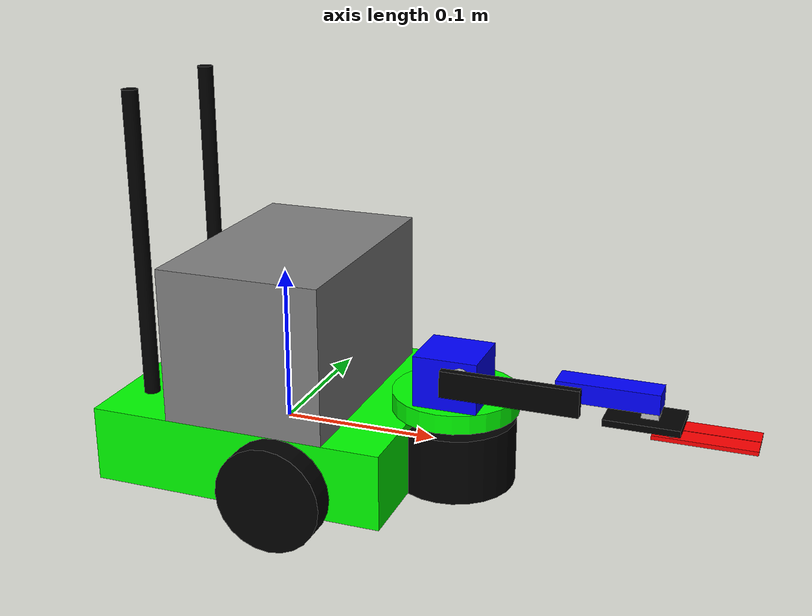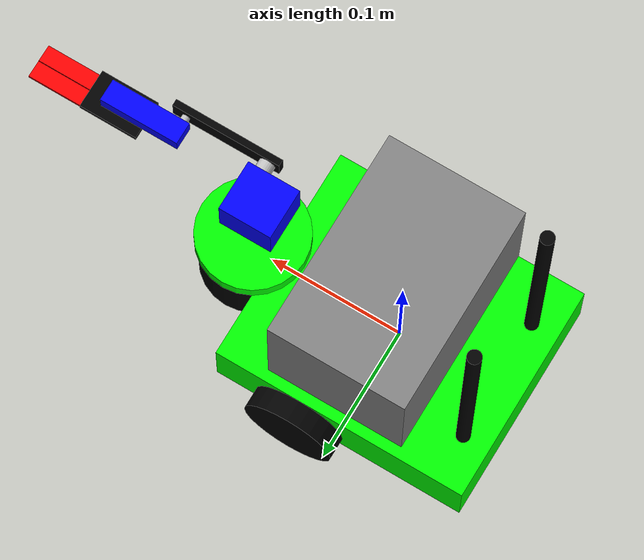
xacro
<?xml version="1.0"?>
<robot name="visual">
    <material name="blue"> <color rgba="0 0 1 1"/> </material>
    <material name="black"> <color rgba="0 0 0 1"/> </material>
    <material name="red"> <color rgba="1 0 0 1"/> </material>
    <material name="white"> <color rgba="1 1 1 1"/> </material>
    <material name="green"> <color rgba="0 1 0 1"/> </material>
    <material name="silver"> <color rgba="0.75 0.75 0.75 1"/> </material>
    <material name="grey"> <color rgba="0.5 0.5 0.5 1"/> </material>

    <!-- Корпус джетбота (с инерцией и коллизией) -->
    <link name="base_link">
        <visual>
            <geometry>
                <box size="0.190 0.162 0.048"/>
            </geometry>
            <material name="green"/>
            <origin xyz="0 0 0" rpy="0 0 0"/>
        </visual>
        <collision>
            <geometry>
                <box size="0.190 0.162 0.048"/>
            </geometry>
            <origin xyz="0 0 0" rpy="0 0 0"/>
        </collision>
        <inertial>
            <mass value="3"/>
            <inertia ixx="0.001" ixy="0" ixz="0"
                iyy="0.001" iyz="0" izz="0.001"/>
        </inertial>
    </link>

    <!-- RP-Lidar (с коллизией и инерцией) -->
    <link name="lidar_link">
        <visual>
            <geometry>
                <cylinder length="0.042" radius="0.038"/>
            </geometry>
            <material name="black"/>
            <origin xyz="0 0 0.021" rpy="0 0 0"/>
        </visual>
        <collision>
            <geometry>
                <cylinder length="0.042" radius="0.038"/>
            </geometry>
            <origin xyz="0 0 0.021" rpy="0 0 0"/>
        </collision>
        <inertial>
            <mass value="0.5"/>
            <inertia ixx="0.001" ixy="0" ixz="0"
                iyy="0.001" iyz="0" izz="0.001"/>
        </inertial>
    </link>

    <joint name="base_link_lidar_joint" type="fixed">
        <parent link="base_link"/>
        <child link="lidar_link"/>
        <origin xyz="0.11491 0 -0.0239" rpy="0 0 2.3562"/>
    </joint>

    <!-- Left wheel (с коллизией и инерцией) -->
    <link name="left_wheel">
        <visual>
            <geometry>
                <cylinder length="0.0156" radius="0.033625"/>
            </geometry>
            <material name="black"/>
            <origin xyz="0 0.0078 0" rpy="1.5708 0 0"/>
        </visual>
        <collision>
            <geometry>
                <cylinder length="0.0156" radius="0.033625"/>
            </geometry>
            <origin xyz="0 0.0078 0" rpy="1.5708 0 0"/>
        </collision>
        <inertial>
            <mass value="0.1"/>
            <inertia ixx="0.001" ixy="0" ixz="0"
                iyy="0.001" iyz="0" izz="0.001"/>
        </inertial>
    </link>

    <joint name="base_link_left_wheel_joint" type="continuous">
        <parent link="base_link"/>
        <child link="left_wheel"/>
        <origin xyz="0.03004 0.08107 -0.00937" rpy="0 0 0"/>
        <axis xyz="0 1 0"/>
    </joint>

    <!-- Right wheel (с коллизией и инерцией) -->
    <link name="right_wheel">
        <visual>
            <geometry>
                <cylinder length="0.0156" radius="0.033625"/>
            </geometry>
            <material name="black"/>
            <origin xyz="0 -0.0078 0" rpy="1.5708 0 0"/>
        </visual>
        <collision>
            <geometry>
                <cylinder length="0.0156" radius="0.033625"/>
            </geometry>
            <origin xyz="0 -0.0078 0" rpy="1.5708 0 0"/>
        </collision>
        <inertial>
            <mass value="0.1"/>
            <inertia ixx="0.001" ixy="0" ixz="0"
                iyy="0.001" iyz="0" izz="0.001"/>
        </inertial>
    </link>

    <joint name="base_link_right_wheel_joint" type="continuous">
        <parent link="base_link"/>
        <child link="right_wheel"/>
        <origin xyz="0.03004 -0.08107 -0.00937" rpy="0 0 0"/>
        <axis xyz="0 1 0"/>
    </joint>

    <!-- Платформа манипулятора -->
    <link name="manipulator_platform">
        <visual>
            <geometry>
                <cylinder length="0.012" radius="0.04"/>
            </geometry>
            <material name="green"/>
            <origin xyz="0.04 0 0.006" rpy="0 0 0"/>
        </visual>
        <collision>
            <geometry>
                <cylinder length="0.012" radius="0.04"/>
            </geometry>
            <origin xyz="0.04 0 0.006" rpy="0 0 0"/>
        </collision>
        <inertial>
            <mass value="0.1"/>
            <inertia ixx="0.001" ixy="0" ixz="0"
                iyy="0.001" iyz="0" izz="0.001"/>
        </inertial>
    </link>

    <joint name="base_link_manipulator_platform_joint" type="fixed">
        <parent link="base_link"/>
        <child link="manipulator_platform"/>
        <origin xyz="0.07491 0 0.0239" rpy="0 0 0"/>
    </joint>

     <!-- =============================================================== Манипулятор =============================================================== -->

    <!-- База манипулятора (с инерцией и коллизией) -->
    <link name="manipulator_base_link">
        <visual>
            <geometry>
                <box size="0.04 0.038 0.0321"/>
            </geometry>
            <material name="blue"/>
            <origin xyz="0 0 0" rpy="0 0 0"/>
        </visual>
        <collision>
            <geometry>
                <box size="0.04 0.038 0.0321"/>
            </geometry>
            <origin xyz="0 0 0" rpy="0 0 0"/>
        </collision>
        <inertial>
            <mass value="1"/>
            <inertia ixx="0.001" ixy="0" ixz="0"
                iyy="0.001" iyz="0" izz="0.001"/>
        </inertial>
    </link>

    <joint name="manipulator_platform_manipulator_base_link_joint" type="fixed">
        <parent link="manipulator_platform"/>
        <child link="manipulator_base_link"/>
        <origin xyz="0.04302 -0.0137 0.02805" rpy="0 0 0"/>
    </joint>

    <!-- Шарнир на базе -->
    <link name="base_hinge">
        <visual>
            <geometry>
                <cylinder length="0.025" radius="0.006"/>
            </geometry>
            <material name="silver"/>
            <origin xyz="0 0 0" rpy="1.57 0 0"/>
        </visual>
    </link>

    <joint name="manipulator_base_hinge_joint" type="fixed">
        <parent link="manipulator_base_link"/>
        <child link="base_hinge"/>
        <origin xyz="0.0101 -0.015 0.00655" rpy="0 0 0"/>
    </joint>

    <!-- Первое звено (с инерцией и коллизией) -->
    <link name="first_link">
        <visual>
            <geometry>
                <box size="0.083 0.005 0.0165"/>
            </geometry>
            <material name="black"/>
            <origin xyz="0.0325 -0.0025 0" rpy="0 0 0"/>
        </visual>
        <collision>
            <geometry>
                <box size="0.083 0.005 0.0165"/>
            </geometry>
            <origin xyz="0.0325 -0.0025 0" rpy="0 0 0"/>
        </collision>
        <inertial>
            <mass value="0.5"/>
            <inertia ixx="0.001" ixy="0" ixz="0"
                iyy="0.001" iyz="0" izz="0.001"/>
        </inertial>
    </link>

    <joint name="base_first_link_joint" type="revolute">
        <parent link="manipulator_base_link"/>
        <child link="first_link"/>
        <origin xyz="0.0101 -0.027 0.00655" rpy="0 0 0"/>
        <axis xyz="0 1 0"/>
        <limit lower="-3.14" upper="3.14" effort="10" velocity="1"/>
    </joint>

    <!-- Шарнир между первым и вторым звеном -->
    <link name="first_link_hinge">
        <visual>
            <geometry>
                <cylinder length="0.012" radius="0.003"/>
            </geometry>
            <material name="silver"/>
            <origin xyz="0 0 0" rpy="1.57 0 0"/>
        </visual>
    </link>

    <joint name="first_link_first_link_hinge_joint" type="fixed">
        <parent link="first_link"/>
        <child link="first_link_hinge"/>
        <origin xyz="0.0634 0.0051 0" rpy="0 0 0"/>
    </joint>

    <!-- Второе звено (с инерцией и коллизией) -->
    <link name="second_link">
        <visual>
            <geometry>
                <box size="0.06 0.0165 0.012"/>
            </geometry>
            <material name="blue"/>
            <origin xyz="0.0241 0.00825 0.0023" rpy="0 0 0"/>
        </visual>
        <collision>
            <geometry>
                <box size="0.06 0.0165 0.012"/>
            </geometry>
            <origin xyz="0.0241 0.00825 0.0023" rpy="0 0 0"/>
        </collision>
        <inertial>
            <mass value="0.3"/>
            <inertia ixx="0.001" ixy="0" ixz="0"
                iyy="0.001" iyz="0" izz="0.001"/>
        </inertial>
    </link>

    <joint name="first_second_links_joint" type="revolute">
        <parent link="first_link"/>
        <child link="second_link"/>
        <origin xyz="0.0634 0.0051 0" rpy="0 0 0"/>
        <axis xyz="0 1 0"/>
        <limit lower="-3.14" upper="3.14" effort="10" velocity="1"/>
    </joint>

    <!-- Крепление платформы -->
    <link name="second_link_fastening">
        <visual>
            <geometry>
                <box size="0.01 0.01 0.01"/>
            </geometry>
            <material name="silver"/>
            <origin xyz="0 0 0" rpy="0 0 0"/>
        </visual>
    </link>

    <joint name="second_link_second_link_fastening_joint" type="fixed">
        <parent link="second_link"/>
        <child link="second_link_fastening"/>
        <origin xyz="0.0482 0.00825 -0.0035" rpy="0 0 0"/>
    </joint>

    <!-- Платформа второго звена (с инерцией и коллизией) -->
    <link name="second_link_platform">
        <visual>
            <geometry>
                <box size="0.044 0.029 0.004"/>
            </geometry>
            <material name="black"/>
            <origin xyz="0.0065 0 -0.002" rpy="0 0 0"/>
        </visual>
        <collision>
            <geometry>
                <box size="0.044 0.029 0.004"/>
            </geometry>
            <origin xyz="0.0065 0 -0.002" rpy="0 0 0"/>
        </collision>
        <inertial>
            <mass value="0.2"/>
            <inertia ixx="0.001" ixy="0" ixz="0"
                iyy="0.001" iyz="0" izz="0.001"/>
        </inertial>
    </link>

    <joint name="second_link_platform_joint" type="fixed">
        <parent link="second_link"/>
        <child link="second_link_platform"/>
        <origin xyz="0.0386 0.00825 -0.0084" rpy="0 0 0"/>
    </joint>

    <!--  Шарнир левого хвата -->
    <link name="left_finger_hinge">
        <visual>
            <geometry>
                <cylinder length="0.006" radius="0.002"/>
            </geometry>
            <material name="silver"/>
            <origin xyz="0 0 0" rpy="0 0 0"/>
        </visual>
    </link>

    <joint name="left_finger_left_finger_hinge_joint" type="fixed">
        <parent link="second_link_platform"/>
        <child link="left_finger_hinge"/>
        <origin xyz="0.023 0.0092 -0.006" rpy="0 0 0"/>
    </joint>

    <!-- Левый хват манипулятора -->
    <link name="left_finger_link">
        <visual>
            <geometry>
                <box size="0.0584 0.0125 0.0025"/>
            </geometry>
            <material name="red"/>
            <origin xyz="0.0183 -0.00275 -0.00125" rpy="0 0 0"/>
        </visual>
        <collision>
            <geometry>
                <box size="0.0584 0.0125 0.0025"/>
            </geometry>
            <origin xyz="0.0183 -0.00275 -0.00125" rpy="0 0 0"/>
        </collision>
        <inertial>
            <mass value="0.1"/>
            <inertia ixx="0.001" ixy="0" ixz="0"
                iyy="0.001" iyz="0" izz="0.001"/>
        </inertial>
    </link>

    <joint name="platform_left_finger_link_joint" type="revolute">
        <parent link="second_link_platform"/>
        <child link="left_finger_link"/>
        <origin xyz="0.023 0.0092 -0.006" rpy="0 0 0"/>
        <axis xyz="0 0 1"/>
        <limit lower="0" upper="0.785" effort="10" velocity="1"/>
    </joint>

    <!-- Шарнир правого хвата -->
    <link name="right_finger_hinge">
        <visual>
            <geometry>
                <cylinder length="0.006" radius="0.002"/>
            </geometry>
            <material name="silver"/>
            <origin xyz="0 0 0" rpy="0 0 0"/>
        </visual>
    </link>

    <joint name="right_finger_right_finger_hinge_joint" type="fixed">
        <parent link="second_link_platform"/>
        <child link="right_finger_hinge"/>
        <origin xyz="0.023 -0.0092 -0.006" rpy="0 0 0"/>
    </joint>

    <!-- Правый хват манипулятора -->
    <link name="right_finger_link">
        <visual>
            <geometry>
                <box size="0.0584 0.0125 0.0025"/>
            </geometry>
            <material name="red"/>
            <origin xyz="0.0183 0.00275 -0.00125" rpy="0 0 0"/>
        </visual>
        <collision>
            <geometry>
                <box size="0.0584 0.0125 0.0025"/>
            </geometry>
            <origin xyz="0.0183 0.00275 -0.00125" rpy="0 0 0"/>
        </collision>
        <inertial>
            <mass value="0.1"/>
            <inertia ixx="0.001" ixy="0" ixz="0"
                iyy="0.001" iyz="0" izz="0.001"/>
        </inertial>
    </link>

    <joint name="platform_right_finger_link_joint" type="revolute">
        <parent link="second_link_platform"/>
        <child link="right_finger_link"/>
        <origin xyz="0.023 -0.0092 -0.006" rpy="0 0 0"/>
        <axis xyz="0 0 1"/>
        <limit lower="-0.785" upper="0" effort="10" velocity="1"/>
    </joint>

    <!-- =============================================================== Манипулятор =============================================================== -->

    <!-- Мозги (с инерцией и коллизией) -->
    <link name="sandwich">
        <visual>
            <geometry>
                <box size="0.103 0.154 0.097"/>
            </geometry>
            <material name="grey"/>
            <origin xyz="0 0 0.0485" rpy="0 0 0"/>
        </visual>
        <collision>
            <geometry>
                <box size="0.103 0.154 0.097"/>
            </geometry>
            <origin xyz="0 0 0.0485" rpy="0 0 0"/>
        </collision>
        <inertial>
            <mass value="1"/>
            <inertia ixx="0.001" ixy="0" ixz="0"
                iyy="0.001" iyz="0" izz="0.001"/>
        </inertial>
    </link>

    <joint name="base_link_sandwich_joint" type="fixed">
        <parent link="base_link"/>
        <child link="sandwich"/>
        <origin xyz="0.0075 -0.004 0.024" rpy="0 0 0"/>
    </joint>

    <!-- Левая антенна (с коллизией и инерцией) -->
    <link name="left_antenn">
        <visual>
            <geometry>
                <cylinder length="0.194" radius="0.005"/>
            </geometry>
            <material name="black"/>
            <origin xyz="0 0 0.097" rpy="0 0 0"/>
        </visual>
        <collision>
            <geometry>
                <cylinder length="0.194" radius="0.005"/>
            </geometry>
            <origin xyz="0 0 0.097" rpy="0 0 0"/>
        </collision>
        <inertial>
            <mass value="0.1"/>
            <inertia ixx="0.001" ixy="0" ixz="0"
                iyy="0.001" iyz="0" izz="0.001"/>
        </inertial>
    </link>

    <joint name="base_link_left_antenn_joint" type="fixed">
        <parent link="base_link"/>
        <child link="left_antenn"/>
        <origin xyz="-0.075 0.045 0.024" rpy="0 0 0"/>
    </joint>

    <!-- Правая антенна (с коллизией и инерцией) -->
    <link name="right_antenn">
        <visual>
            <geometry>
                <cylinder length="0.194" radius="0.005"/>
            </geometry>
            <material name="black"/>
            <origin xyz="0 0 0.097" rpy="0 0 0"/>
        </visual>
        <collision>
            <geometry>
                <cylinder length="0.194" radius="0.005"/>
            </geometry>
            <origin xyz="0 0 0.097" rpy="0 0 0"/>
        </collision>
        <inertial>
            <mass value="0.1"/>
            <inertia ixx="0.001" ixy="0" ixz="0"
                iyy="0.001" iyz="0" izz="0.001"/>
        </inertial>
    </link>

    <joint name="base_link_right_antenn_joint" type="fixed">
        <parent link="base_link"/>
        <child link="right_antenn"/>
        <origin xyz="-0.075 -0.045 0.024" rpy="0 0 0"/>
    </joint>

</robot>
